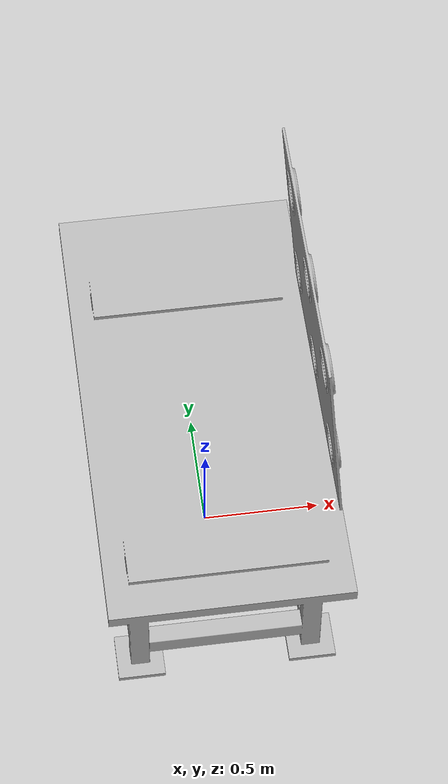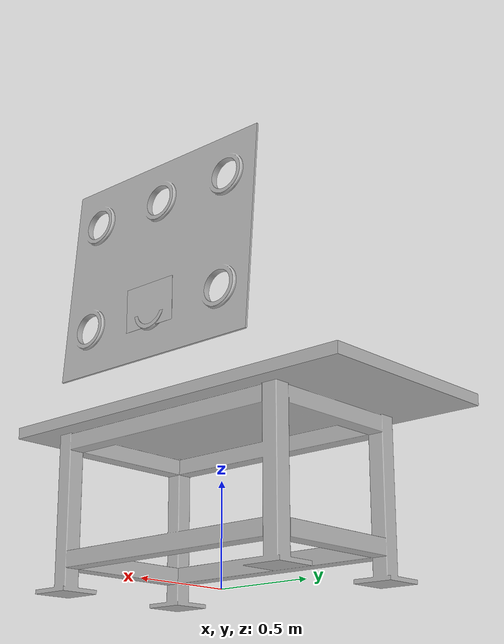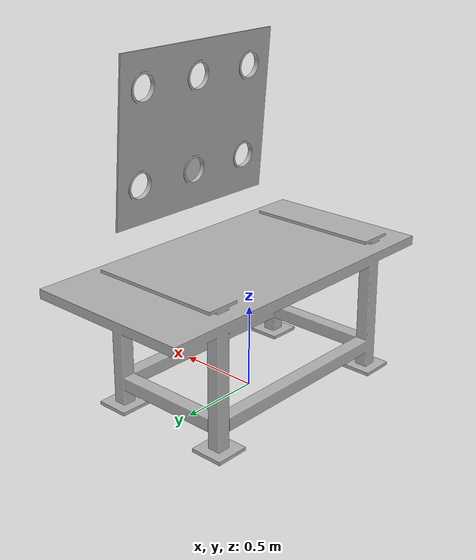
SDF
<?xml version='1.0'?>
<sdf version='1.6'>
  <model name='steel_tke_glovebox'>
    <link name='link'>
      <pose frame=''>0 0 0 0 0 0</pose>
      <inertial>
         <mass>50</mass>
        <inertia>
          <ixx>0.166667</ixx>
          <ixy>0</ixy>
          <ixz>0</ixz>
          <iyy>0.166667</iyy>
          <iyz>0</iyz>
          <izz>0.166667</izz>
        </inertia>
        <pose frame=''>0 0 0 0 0 0</pose>
      </inertial>
      <gravity>1</gravity>
      <self_collide>0</self_collide>
      <kinematic>0</kinematic>

      <visual name='visual'>
        <pose frame=''>0 0 0 0 0 0</pose>
        <geometry>
          <mesh>
            <uri>model://steel_tke_glovebox/meshes/steel_tke_glovebox.stl</uri>
            <scale>1 1 1</scale>
          </mesh>
        </geometry>
        <material>
          <lighting>1</lighting>
          <ambient>0.3 0.3 0.3 1</ambient>
          <diffuse>0.7 0.7 0.7 1</diffuse>
          <specular>0.01 0.01 0.01 1</specular>
          <emissive>0 0 0 1</emissive>
          <shader type='vertex'>
            <normal_map>__default__</normal_map>
          </shader>
        </material>
        <cast_shadows>1</cast_shadows>
        <transparency>0</transparency>
      </visual>
      <collision name='collision'>
        <laser_retro>0</laser_retro>
        <max_contacts>10</max_contacts>
        <pose frame=''>0 0 0 0 0 0</pose>
        <geometry>
          <mesh>
            <uri>model://steel_tke_glovebox/meshes/steel_tke_glovebox.stl</uri>
            <scale>1 1 1</scale>
          </mesh>
        </geometry>
      </collision>
    </link>

    <model name='markers'>
      <static>1</static>
      <link name='markers'>
        <visual name='visual'>
          <geometry>
            <box>
              <size>0.001 0.297 0.210</size>
            </box>
          </geometry>
          <material>
            <script>
              <uri>model://steel_tke_glovebox/material/scripts</uri>
              <uri>model://steel_tke_glovebox/material/textures</uri>
              <name>ARtrack/markers</name>
            </script>
          </material>
        </visual>
      </link>
      <pose frame=''>0.473 -0.015 1.25 0 0 0</pose>
    </model>

    <static>0</static>
    <allow_auto_disable>1</allow_auto_disable>
  </model>
</sdf>
